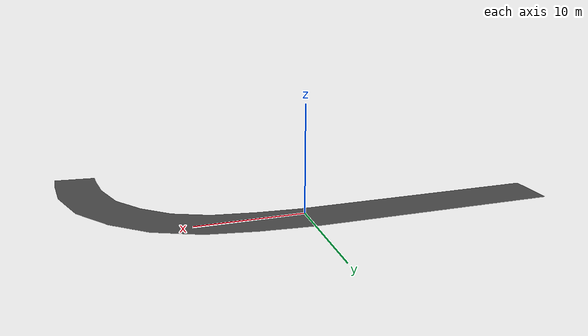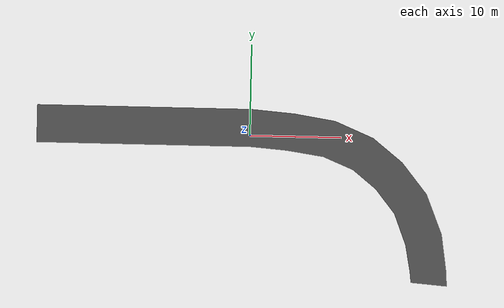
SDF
<?xml version="1.0" ?>
<sdf version="1.0">
  <model name="curved_road">
    <static>true</static>
    <link name="link">
      <collision name="collision">
        <geometry>
          <mesh>
            <uri>models/curved_road/curved_road.dae</uri>
             <scale>3 3 .01</scale>
          </mesh>
        </geometry>
      </collision>
      <visual name="visual">
        <cast_shadows>false</cast_shadows>
        <geometry>
          <mesh>
            <uri>models/curved_road/curved_road.dae</uri>
            <scale>3 3 .01</scale>
          </mesh>
        </geometry>
        <material>
          <script>
            <uri>models/curved_road/materials/scripts</uri>
            <uri>models/curved_road/materials/textures</uri>
            <name>curved_road</name>
          </script>

        </material>
      </visual>
    </link>
  </model>
</sdf>
